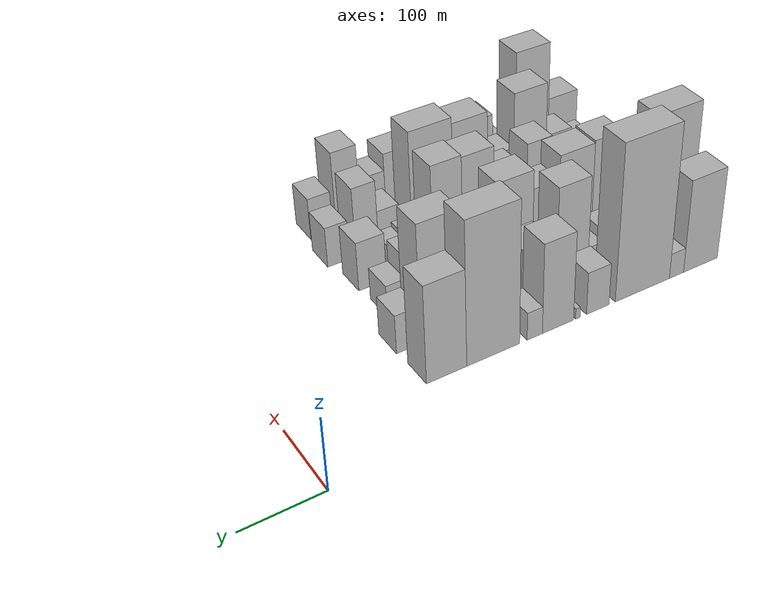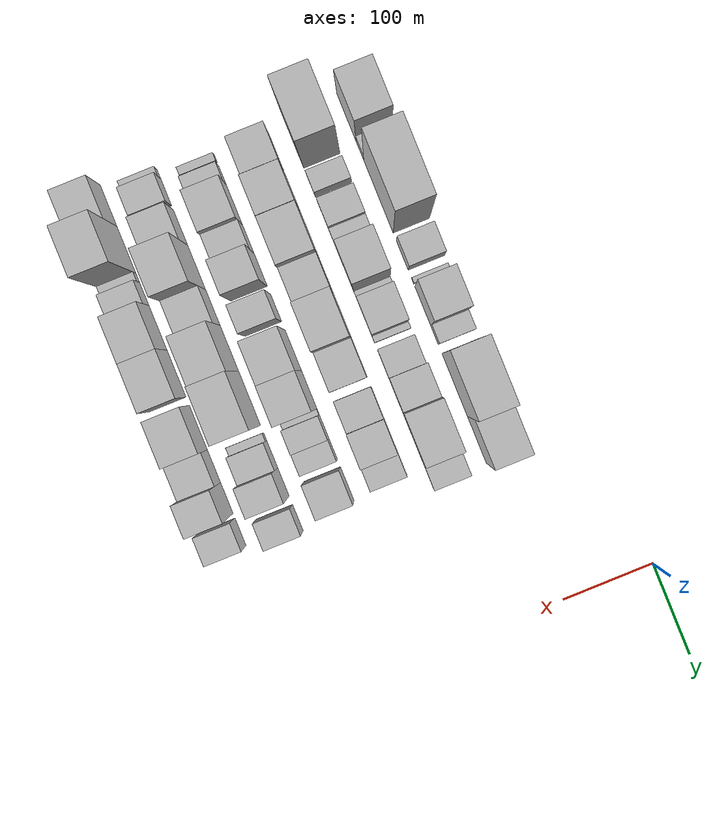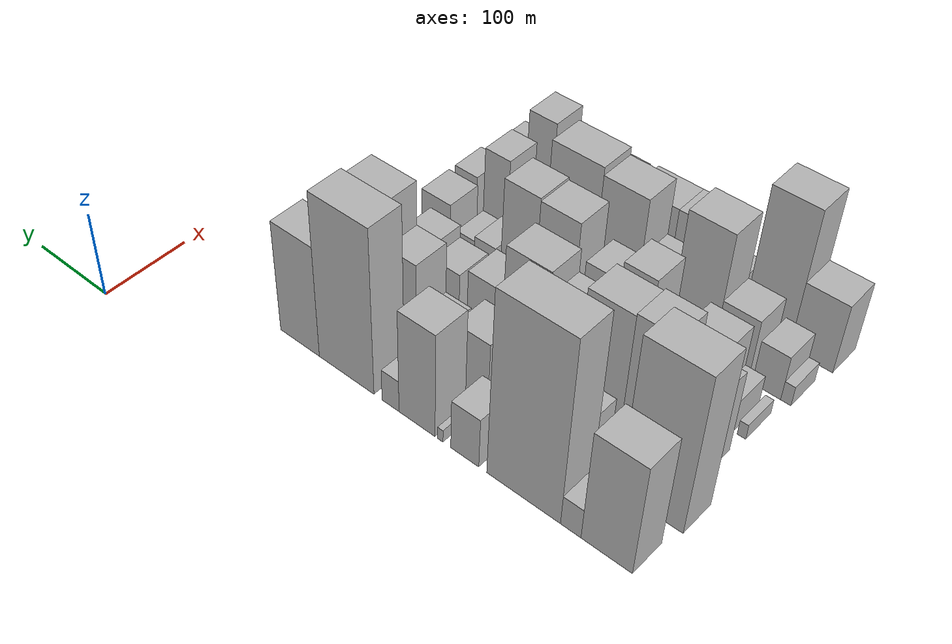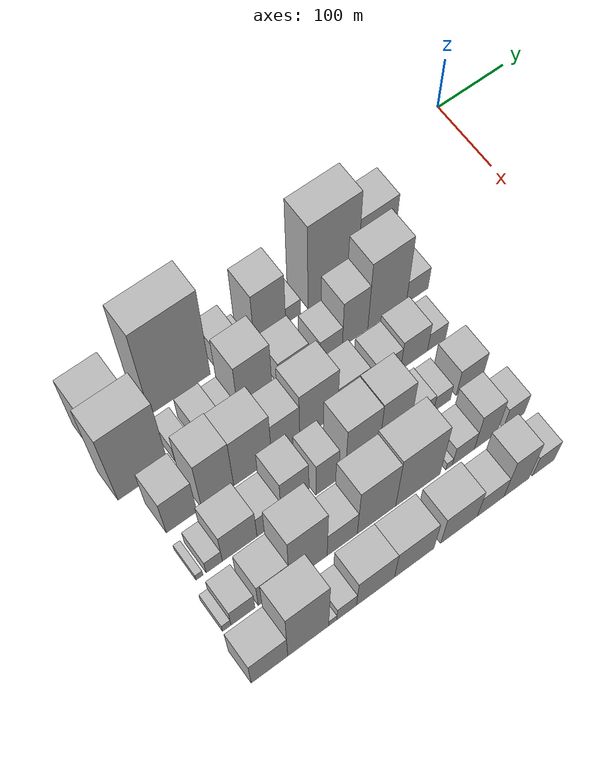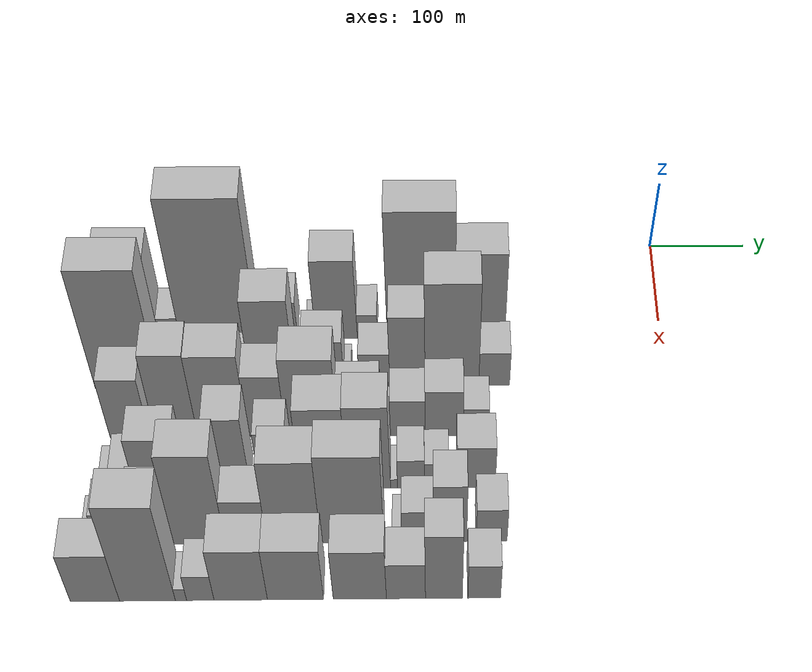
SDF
<sdf version="1.6">
 <world name="default">
  <model name="building_13">
   <static>1</static>
   <pose>100.0000 -541.7724 0 0.000000 0.000000 0.000000</pose>
   <link name="link">
    <pose>0 0 66.00 0 0 0</pose>
    <collision name="collision"><geometry><box><size>40.0000 52.1810 132.0000</size></box></geometry></collision>
    <visual name="visual">
     <cast_shadows>0</cast_shadows>
     <geometry><box><size>40.0000 52.1810 132.0000</size></box></geometry>
     <material>
      <script>
       <uri>model://HANNAS_wall/materials/scripts</uri>
       <uri>model://HANNAS_wall/materials/textures</uri>
       <name>vrc/HANNAS_wall</name>
      </script>
     </material>
    </visual>
   </link>
  </model>
  <model name="building_14">
   <static>1</static>
   <pose>100.0000 -505.0109 0 0.000000 0.000000 0.000000</pose>
   <link name="link">
    <pose>0 0 18.00 0 0 0</pose>
    <collision name="collision"><geometry><box><size>40.0000 21.3421 36.0000</size></box></geometry></collision>
    <visual name="visual">
     <cast_shadows>0</cast_shadows>
     <geometry><box><size>40.0000 21.3421 36.0000</size></box></geometry>
     <material>
      <script>
       <uri>model://HANNAS_wall/materials/scripts</uri>
       <uri>model://HANNAS_wall/materials/textures</uri>
       <name>vrc/HANNAS_wall</name>
      </script>
     </material>
    </visual>
   </link>
  </model>
  <model name="building_15">
   <static>1</static>
   <pose>100.0000 -454.2661 0 0.000000 0.000000 0.000000</pose>
   <link name="link">
    <pose>0 0 109.50 0 0 0</pose>
    <collision name="collision"><geometry><box><size>40.0000 80.1474 219.0000</size></box></geometry></collision>
    <visual name="visual">
     <cast_shadows>0</cast_shadows>
     <geometry><box><size>40.0000 80.1474 219.0000</size></box></geometry>
     <material>
      <script>
       <uri>model://HANNAS_wall/materials/scripts</uri>
       <uri>model://HANNAS_wall/materials/textures</uri>
       <name>vrc/HANNAS_wall</name>
      </script>
     </material>
    </visual>
   </link>
  </model>
  <model name="building_16">
   <static>1</static>
   <pose>100.0000 -389.1485 0 0.000000 0.000000 0.000000</pose>
   <link name="link">
    <pose>0 0 30.00 0 0 0</pose>
    <collision name="collision"><geometry><box><size>40.0000 32.0879 60.0000</size></box></geometry></collision>
    <visual name="visual">
     <cast_shadows>0</cast_shadows>
     <geometry><box><size>40.0000 32.0879 60.0000</size></box></geometry>
     <material>
      <script>
       <uri>model://HANNAS_wall/materials/scripts</uri>
       <uri>model://HANNAS_wall/materials/textures</uri>
       <name>vrc/HANNAS_wall</name>
      </script>
     </material>
    </visual>
   </link>
  </model>
  <model name="building_17">
   <static>1</static>
   <pose>100.0000 -360.9541 0 0.000000 0.000000 0.000000</pose>
   <link name="link">
    <pose>0 0 7.50 0 0 0</pose>
    <collision name="collision"><geometry><box><size>40.0000 6.3009 15.0000</size></box></geometry></collision>
    <visual name="visual">
     <cast_shadows>0</cast_shadows>
     <geometry><box><size>40.0000 6.3009 15.0000</size></box></geometry>
     <material>
      <script>
       <uri>model://HANNAS_wall/materials/scripts</uri>
       <uri>model://HANNAS_wall/materials/textures</uri>
       <name>vrc/HANNAS_wall</name>
      </script>
     </material>
    </visual>
   </link>
  </model>
  <model name="building_18">
   <static>1</static>
   <pose>100.0000 -333.2921 0 0.000000 0.000000 0.000000</pose>
   <link name="link">
    <pose>0 0 63.00 0 0 0</pose>
    <collision name="collision"><geometry><box><size>40.0000 43.0232 126.0000</size></box></geometry></collision>
    <visual name="visual">
     <cast_shadows>0</cast_shadows>
     <geometry><box><size>40.0000 43.0232 126.0000</size></box></geometry>
     <material>
      <script>
       <uri>model://HANNAS_wall/materials/scripts</uri>
       <uri>model://HANNAS_wall/materials/textures</uri>
       <name>vrc/HANNAS_wall</name>
      </script>
     </material>
    </visual>
   </link>
  </model>
  <model name="building_19">
   <static>1</static>
   <pose>100.0000 -301.3804 0 0.000000 0.000000 0.000000</pose>
   <link name="link">
    <pose>0 0 19.50 0 0 0</pose>
    <collision name="collision"><geometry><box><size>40.0000 20.8003 39.0000</size></box></geometry></collision>
    <visual name="visual">
     <cast_shadows>0</cast_shadows>
     <geometry><box><size>40.0000 20.8003 39.0000</size></box></geometry>
     <material>
      <script>
       <uri>model://HANNAS_wall/materials/scripts</uri>
       <uri>model://HANNAS_wall/materials/textures</uri>
       <name>vrc/HANNAS_wall</name>
      </script>
     </material>
    </visual>
   </link>
  </model>
  <model name="building_20">
   <static>1</static>
   <pose>100.0000 -246.1595 0 0.000000 0.000000 0.000000</pose>
   <link name="link">
    <pose>0 0 99.00 0 0 0</pose>
    <collision name="collision"><geometry><box><size>40.0000 69.6414 198.0000</size></box></geometry></collision>
    <visual name="visual">
     <cast_shadows>0</cast_shadows>
     <geometry><box><size>40.0000 69.6414 198.0000</size></box></geometry>
     <material>
      <script>
       <uri>model://HANNAS_wall/materials/scripts</uri>
       <uri>model://HANNAS_wall/materials/textures</uri>
       <name>vrc/HANNAS_wall</name>
      </script>
     </material>
    </visual>
   </link>
  </model>
  <model name="building_21">
   <static>1</static>
   <pose>100.0000 -185.6320 0 0.000000 0.000000 0.000000</pose>
   <link name="link">
    <pose>0 0 67.50 0 0 0</pose>
    <collision name="collision"><geometry><box><size>40.0000 51.4138 135.0000</size></box></geometry></collision>
    <visual name="visual">
     <cast_shadows>0</cast_shadows>
     <geometry><box><size>40.0000 51.4138 135.0000</size></box></geometry>
     <material>
      <script>
       <uri>model://HANNAS_wall/materials/scripts</uri>
       <uri>model://HANNAS_wall/materials/textures</uri>
       <name>vrc/HANNAS_wall</name>
      </script>
     </material>
    </visual>
   </link>
  </model>
  <model name="building_63">
   <static>1</static>
   <pose>160.0000 -542.6554 0 0.000000 0.000000 0.000000</pose>
   <link name="link">
    <pose>0 0 94.50 0 0 0</pose>
    <collision name="collision"><geometry><box><size>40.0000 65.0789 189.0000</size></box></geometry></collision>
    <visual name="visual">
     <cast_shadows>0</cast_shadows>
     <geometry><box><size>40.0000 65.0789 189.0000</size></box></geometry>
     <material>
      <script>
       <uri>model://HANNAS_wall/materials/scripts</uri>
       <uri>model://HANNAS_wall/materials/textures</uri>
       <name>vrc/HANNAS_wall</name>
      </script>
     </material>
    </visual>
   </link>
  </model>
  <model name="building_64">
   <static>1</static>
   <pose>160.0000 -490.1857 0 0.000000 0.000000 0.000000</pose>
   <link name="link">
    <pose>0 0 21.00 0 0 0</pose>
    <collision name="collision"><geometry><box><size>40.0000 23.8605 42.0000</size></box></geometry></collision>
    <visual name="visual">
     <cast_shadows>0</cast_shadows>
     <geometry><box><size>40.0000 23.8605 42.0000</size></box></geometry>
     <material>
      <script>
       <uri>model://HANNAS_wall/materials/scripts</uri>
       <uri>model://HANNAS_wall/materials/textures</uri>
       <name>vrc/HANNAS_wall</name>
      </script>
     </material>
    </visual>
   </link>
  </model>
  <model name="building_65">
   <static>1</static>
   <pose>160.0000 -455.5617 0 0.000000 0.000000 0.000000</pose>
   <link name="link">
    <pose>0 0 27.00 0 0 0</pose>
    <collision name="collision"><geometry><box><size>40.0000 31.3876 54.0000</size></box></geometry></collision>
    <visual name="visual">
     <cast_shadows>0</cast_shadows>
     <geometry><box><size>40.0000 31.3876 54.0000</size></box></geometry>
     <material>
      <script>
       <uri>model://HANNAS_wall/materials/scripts</uri>
       <uri>model://HANNAS_wall/materials/textures</uri>
       <name>vrc/HANNAS_wall</name>
      </script>
     </material>
    </visual>
   </link>
  </model>
  <model name="building_66">
   <static>1</static>
   <pose>160.0000 -429.0084 0 0.000000 0.000000 0.000000</pose>
   <link name="link">
    <pose>0 0 19.50 0 0 0</pose>
    <collision name="collision"><geometry><box><size>40.0000 21.7190 39.0000</size></box></geometry></collision>
    <visual name="visual">
     <cast_shadows>0</cast_shadows>
     <geometry><box><size>40.0000 21.7190 39.0000</size></box></geometry>
     <material>
      <script>
       <uri>model://HANNAS_wall/materials/scripts</uri>
       <uri>model://HANNAS_wall/materials/textures</uri>
       <name>vrc/HANNAS_wall</name>
      </script>
     </material>
    </visual>
   </link>
  </model>
  <model name="building_67">
   <static>1</static>
   <pose>160.0000 -395.6037 0 0.000000 0.000000 0.000000</pose>
   <link name="link">
    <pose>0 0 70.50 0 0 0</pose>
    <collision name="collision"><geometry><box><size>40.0000 45.0903 141.0000</size></box></geometry></collision>
    <visual name="visual">
     <cast_shadows>0</cast_shadows>
     <geometry><box><size>40.0000 45.0903 141.0000</size></box></geometry>
     <material>
      <script>
       <uri>model://HANNAS_wall/materials/scripts</uri>
       <uri>model://HANNAS_wall/materials/textures</uri>
       <name>vrc/HANNAS_wall</name>
      </script>
     </material>
    </visual>
   </link>
  </model>
  <model name="building_68">
   <static>1</static>
   <pose>160.0000 -368.7644 0 0.000000 0.000000 0.000000</pose>
   <link name="link">
    <pose>0 0 9.00 0 0 0</pose>
    <collision name="collision"><geometry><box><size>40.0000 8.5884 18.0000</size></box></geometry></collision>
    <visual name="visual">
     <cast_shadows>0</cast_shadows>
     <geometry><box><size>40.0000 8.5884 18.0000</size></box></geometry>
     <material>
      <script>
       <uri>model://HANNAS_wall/materials/scripts</uri>
       <uri>model://HANNAS_wall/materials/textures</uri>
       <name>vrc/HANNAS_wall</name>
      </script>
     </material>
    </visual>
   </link>
  </model>
  <model name="building_69">
   <static>1</static>
   <pose>160.0000 -344.1750 0 0.000000 0.000000 0.000000</pose>
   <link name="link">
    <pose>0 0 37.50 0 0 0</pose>
    <collision name="collision"><geometry><box><size>40.0000 40.5903 75.0000</size></box></geometry></collision>
    <visual name="visual">
     <cast_shadows>0</cast_shadows>
     <geometry><box><size>40.0000 40.5903 75.0000</size></box></geometry>
     <material>
      <script>
       <uri>model://HANNAS_wall/materials/scripts</uri>
       <uri>model://HANNAS_wall/materials/textures</uri>
       <name>vrc/HANNAS_wall</name>
      </script>
     </material>
    </visual>
   </link>
  </model>
  <model name="building_70">
   <static>1</static>
   <pose>160.0000 -320.2654 0 0.000000 0.000000 0.000000</pose>
   <link name="link">
    <pose>0 0 9.00 0 0 0</pose>
    <collision name="collision"><geometry><box><size>40.0000 7.2290 18.0000</size></box></geometry></collision>
    <visual name="visual">
     <cast_shadows>0</cast_shadows>
     <geometry><box><size>40.0000 7.2290 18.0000</size></box></geometry>
     <material>
      <script>
       <uri>model://HANNAS_wall/materials/scripts</uri>
       <uri>model://HANNAS_wall/materials/textures</uri>
       <name>vrc/HANNAS_wall</name>
      </script>
     </material>
    </visual>
   </link>
  </model>
  <model name="building_71">
   <static>1</static>
   <pose>160.0000 -293.2663 0 0.000000 0.000000 0.000000</pose>
   <link name="link">
    <pose>0 0 27.00 0 0 0</pose>
    <collision name="collision"><geometry><box><size>40.0000 30.7691 54.0000</size></box></geometry></collision>
    <visual name="visual">
     <cast_shadows>0</cast_shadows>
     <geometry><box><size>40.0000 30.7691 54.0000</size></box></geometry>
     <material>
      <script>
       <uri>model://HANNAS_wall/materials/scripts</uri>
       <uri>model://HANNAS_wall/materials/textures</uri>
       <name>vrc/HANNAS_wall</name>
      </script>
     </material>
    </visual>
   </link>
  </model>
  <model name="building_72">
   <static>1</static>
   <pose>160.0000 -260.1154 0 0.000000 0.000000 0.000000</pose>
   <link name="link">
    <pose>0 0 57.00 0 0 0</pose>
    <collision name="collision"><geometry><box><size>40.0000 35.5327 114.0000</size></box></geometry></collision>
    <visual name="visual">
     <cast_shadows>0</cast_shadows>
     <geometry><box><size>40.0000 35.5327 114.0000</size></box></geometry>
     <material>
      <script>
       <uri>model://HANNAS_wall/materials/scripts</uri>
       <uri>model://HANNAS_wall/materials/textures</uri>
       <name>vrc/HANNAS_wall</name>
      </script>
     </material>
    </visual>
   </link>
  </model>
  <model name="building_73">
   <static>1</static>
   <pose>160.0000 -215.2175 0 0.000000 0.000000 0.000000</pose>
   <link name="link">
    <pose>0 0 82.50 0 0 0</pose>
    <collision name="collision"><geometry><box><size>40.0000 54.2631 165.0000</size></box></geometry></collision>
    <visual name="visual">
     <cast_shadows>0</cast_shadows>
     <geometry><box><size>40.0000 54.2631 165.0000</size></box></geometry>
     <material>
      <script>
       <uri>model://HANNAS_wall/materials/scripts</uri>
       <uri>model://HANNAS_wall/materials/textures</uri>
       <name>vrc/HANNAS_wall</name>
      </script>
     </material>
    </visual>
   </link>
  </model>
  <model name="building_74">
   <static>1</static>
   <pose>160.0000 -172.6182 0 0.000000 0.000000 0.000000</pose>
   <link name="link">
    <pose>0 0 27.00 0 0 0</pose>
    <collision name="collision"><geometry><box><size>40.0000 30.9355 54.0000</size></box></geometry></collision>
    <visual name="visual">
     <cast_shadows>0</cast_shadows>
     <geometry><box><size>40.0000 30.9355 54.0000</size></box></geometry>
     <material>
      <script>
       <uri>model://HANNAS_wall/materials/scripts</uri>
       <uri>model://HANNAS_wall/materials/textures</uri>
       <name>vrc/HANNAS_wall</name>
      </script>
     </material>
    </visual>
   </link>
  </model>
  <model name="building_113">
   <static>1</static>
   <pose>220.0000 -534.2892 0 0.000000 0.000000 0.000000</pose>
   <link name="link">
    <pose>0 0 49.50 0 0 0</pose>
    <collision name="collision"><geometry><box><size>40.0000 39.0980 99.0000</size></box></geometry></collision>
    <visual name="visual">
     <cast_shadows>0</cast_shadows>
     <geometry><box><size>40.0000 39.0980 99.0000</size></box></geometry>
     <material>
      <script>
       <uri>model://HANNAS_wall/materials/scripts</uri>
       <uri>model://HANNAS_wall/materials/textures</uri>
       <name>vrc/HANNAS_wall</name>
      </script>
     </material>
    </visual>
   </link>
  </model>
  <model name="building_114">
   <static>1</static>
   <pose>220.0000 -487.9236 0 0.000000 0.000000 0.000000</pose>
   <link name="link">
    <pose>0 0 69.00 0 0 0</pose>
    <collision name="collision"><geometry><box><size>40.0000 41.6332 138.0000</size></box></geometry></collision>
    <visual name="visual">
     <cast_shadows>0</cast_shadows>
     <geometry><box><size>40.0000 41.6332 138.0000</size></box></geometry>
     <material>
      <script>
       <uri>model://HANNAS_wall/materials/scripts</uri>
       <uri>model://HANNAS_wall/materials/textures</uri>
       <name>vrc/HANNAS_wall</name>
      </script>
     </material>
    </visual>
   </link>
  </model>
  <model name="building_115">
   <static>1</static>
   <pose>220.0000 -442.2035 0 0.000000 0.000000 0.000000</pose>
   <link name="link">
    <pose>0 0 67.50 0 0 0</pose>
    <collision name="collision"><geometry><box><size>40.0000 49.8068 135.0000</size></box></geometry></collision>
    <visual name="visual">
     <cast_shadows>0</cast_shadows>
     <geometry><box><size>40.0000 49.8068 135.0000</size></box></geometry>
     <material>
      <script>
       <uri>model://HANNAS_wall/materials/scripts</uri>
       <uri>model://HANNAS_wall/materials/textures</uri>
       <name>vrc/HANNAS_wall</name>
      </script>
     </material>
    </visual>
   </link>
  </model>
  <model name="building_116">
   <static>1</static>
   <pose>220.0000 -398.6664 0 0.000000 0.000000 0.000000</pose>
   <link name="link">
    <pose>0 0 51.00 0 0 0</pose>
    <collision name="collision"><geometry><box><size>40.0000 37.2676 102.0000</size></box></geometry></collision>
    <visual name="visual">
     <cast_shadows>0</cast_shadows>
     <geometry><box><size>40.0000 37.2676 102.0000</size></box></geometry>
     <material>
      <script>
       <uri>model://HANNAS_wall/materials/scripts</uri>
       <uri>model://HANNAS_wall/materials/textures</uri>
       <name>vrc/HANNAS_wall</name>
      </script>
     </material>
    </visual>
   </link>
  </model>
  <model name="building_117">
   <static>1</static>
   <pose>220.0000 -354.5471 0 0.000000 0.000000 0.000000</pose>
   <link name="link">
    <pose>0 0 64.50 0 0 0</pose>
    <collision name="collision"><geometry><box><size>40.0000 50.9709 129.0000</size></box></geometry></collision>
    <visual name="visual">
     <cast_shadows>0</cast_shadows>
     <geometry><box><size>40.0000 50.9709 129.0000</size></box></geometry>
     <material>
      <script>
       <uri>model://HANNAS_wall/materials/scripts</uri>
       <uri>model://HANNAS_wall/materials/textures</uri>
       <name>vrc/HANNAS_wall</name>
      </script>
     </material>
    </visual>
   </link>
  </model>
  <model name="building_118">
   <static>1</static>
   <pose>220.0000 -307.9760 0 0.000000 0.000000 0.000000</pose>
   <link name="link">
    <pose>0 0 36.00 0 0 0</pose>
    <collision name="collision"><geometry><box><size>40.0000 42.1712 72.0000</size></box></geometry></collision>
    <visual name="visual">
     <cast_shadows>0</cast_shadows>
     <geometry><box><size>40.0000 42.1712 72.0000</size></box></geometry>
     <material>
      <script>
       <uri>model://HANNAS_wall/materials/scripts</uri>
       <uri>model://HANNAS_wall/materials/textures</uri>
       <name>vrc/HANNAS_wall</name>
      </script>
     </material>
    </visual>
   </link>
  </model>
  <model name="building_119">
   <static>1</static>
   <pose>220.0000 -259.7179 0 0.000000 0.000000 0.000000</pose>
   <link name="link">
    <pose>0 0 30.00 0 0 0</pose>
    <collision name="collision"><geometry><box><size>40.0000 34.3451 60.0000</size></box></geometry></collision>
    <visual name="visual">
     <cast_shadows>0</cast_shadows>
     <geometry><box><size>40.0000 34.3451 60.0000</size></box></geometry>
     <material>
      <script>
       <uri>model://HANNAS_wall/materials/scripts</uri>
       <uri>model://HANNAS_wall/materials/textures</uri>
       <name>vrc/HANNAS_wall</name>
      </script>
     </material>
    </visual>
   </link>
  </model>
  <model name="building_120">
   <static>1</static>
   <pose>220.0000 -223.7635 0 0.000000 0.000000 0.000000</pose>
   <link name="link">
    <pose>0 0 37.50 0 0 0</pose>
    <collision name="collision"><geometry><box><size>40.0000 37.5639 75.0000</size></box></geometry></collision>
    <visual name="visual">
     <cast_shadows>0</cast_shadows>
     <geometry><box><size>40.0000 37.5639 75.0000</size></box></geometry>
     <material>
      <script>
       <uri>model://HANNAS_wall/materials/scripts</uri>
       <uri>model://HANNAS_wall/materials/textures</uri>
       <name>vrc/HANNAS_wall</name>
      </script>
     </material>
    </visual>
   </link>
  </model>
  <model name="building_121">
   <static>1</static>
   <pose>220.0000 -192.2729 0 0.000000 0.000000 0.000000</pose>
   <link name="link">
    <pose>0 0 22.50 0 0 0</pose>
    <collision name="collision"><geometry><box><size>40.0000 25.4171 45.0000</size></box></geometry></collision>
    <visual name="visual">
     <cast_shadows>0</cast_shadows>
     <geometry><box><size>40.0000 25.4171 45.0000</size></box></geometry>
     <material>
      <script>
       <uri>model://HANNAS_wall/materials/scripts</uri>
       <uri>model://HANNAS_wall/materials/textures</uri>
       <name>vrc/HANNAS_wall</name>
      </script>
     </material>
    </visual>
   </link>
  </model>
  <model name="building_165">
   <static>1</static>
   <pose>280.0000 -552.9891 0 0.000000 0.000000 0.000000</pose>
   <link name="link">
    <pose>0 0 9.00 0 0 0</pose>
    <collision name="collision"><geometry><box><size>40.0000 8.8771 18.0000</size></box></geometry></collision>
    <visual name="visual">
     <cast_shadows>0</cast_shadows>
     <geometry><box><size>40.0000 8.8771 18.0000</size></box></geometry>
     <material>
      <script>
       <uri>model://HANNAS_wall/materials/scripts</uri>
       <uri>model://HANNAS_wall/materials/textures</uri>
       <name>vrc/HANNAS_wall</name>
      </script>
     </material>
    </visual>
   </link>
  </model>
  <model name="building_166">
   <static>1</static>
   <pose>280.0000 -534.2191 0 0.000000 0.000000 0.000000</pose>
   <link name="link">
    <pose>0 0 19.50 0 0 0</pose>
    <collision name="collision"><geometry><box><size>40.0000 20.6629 39.0000</size></box></geometry></collision>
    <visual name="visual">
     <cast_shadows>0</cast_shadows>
     <geometry><box><size>40.0000 20.6629 39.0000</size></box></geometry>
     <material>
      <script>
       <uri>model://HANNAS_wall/materials/scripts</uri>
       <uri>model://HANNAS_wall/materials/textures</uri>
       <name>vrc/HANNAS_wall</name>
      </script>
     </material>
    </visual>
   </link>
  </model>
  <model name="building_167">
   <static>1</static>
   <pose>280.0000 -501.7302 0 0.000000 0.000000 0.000000</pose>
   <link name="link">
    <pose>0 0 43.50 0 0 0</pose>
    <collision name="collision"><geometry><box><size>40.0000 44.3150 87.0000</size></box></geometry></collision>
    <visual name="visual">
     <cast_shadows>0</cast_shadows>
     <geometry><box><size>40.0000 44.3150 87.0000</size></box></geometry>
     <material>
      <script>
       <uri>model://HANNAS_wall/materials/scripts</uri>
       <uri>model://HANNAS_wall/materials/textures</uri>
       <name>vrc/HANNAS_wall</name>
      </script>
     </material>
    </visual>
   </link>
  </model>
  <model name="building_168">
   <static>1</static>
   <pose>280.0000 -463.7469 0 0.000000 0.000000 0.000000</pose>
   <link name="link">
    <pose>0 0 31.50 0 0 0</pose>
    <collision name="collision"><geometry><box><size>40.0000 31.6515 63.0000</size></box></geometry></collision>
    <visual name="visual">
     <cast_shadows>0</cast_shadows>
     <geometry><box><size>40.0000 31.6515 63.0000</size></box></geometry>
     <material>
      <script>
       <uri>model://HANNAS_wall/materials/scripts</uri>
       <uri>model://HANNAS_wall/materials/textures</uri>
       <name>vrc/HANNAS_wall</name>
      </script>
     </material>
    </visual>
   </link>
  </model>
  <model name="building_169">
   <static>1</static>
   <pose>280.0000 -429.9049 0 0.000000 0.000000 0.000000</pose>
   <link name="link">
    <pose>0 0 60.00 0 0 0</pose>
    <collision name="collision"><geometry><box><size>40.0000 36.0327 120.0000</size></box></geometry></collision>
    <visual name="visual">
     <cast_shadows>0</cast_shadows>
     <geometry><box><size>40.0000 36.0327 120.0000</size></box></geometry>
     <material>
      <script>
       <uri>model://HANNAS_wall/materials/scripts</uri>
       <uri>model://HANNAS_wall/materials/textures</uri>
       <name>vrc/HANNAS_wall</name>
      </script>
     </material>
    </visual>
   </link>
  </model>
  <model name="building_170">
   <static>1</static>
   <pose>280.0000 -387.8506 0 0.000000 0.000000 0.000000</pose>
   <link name="link">
    <pose>0 0 48.00 0 0 0</pose>
    <collision name="collision"><geometry><box><size>40.0000 30.0759 96.0000</size></box></geometry></collision>
    <visual name="visual">
     <cast_shadows>0</cast_shadows>
     <geometry><box><size>40.0000 30.0759 96.0000</size></box></geometry>
     <material>
      <script>
       <uri>model://HANNAS_wall/materials/scripts</uri>
       <uri>model://HANNAS_wall/materials/textures</uri>
       <name>vrc/HANNAS_wall</name>
      </script>
     </material>
    </visual>
   </link>
  </model>
  <model name="building_171">
   <static>1</static>
   <pose>280.0000 -341.1569 0 0.000000 0.000000 0.000000</pose>
   <link name="link">
    <pose>0 0 67.50 0 0 0</pose>
    <collision name="collision"><geometry><box><size>40.0000 45.3115 135.0000</size></box></geometry></collision>
    <visual name="visual">
     <cast_shadows>0</cast_shadows>
     <geometry><box><size>40.0000 45.3115 135.0000</size></box></geometry>
     <material>
      <script>
       <uri>model://HANNAS_wall/materials/scripts</uri>
       <uri>model://HANNAS_wall/materials/textures</uri>
       <name>vrc/HANNAS_wall</name>
      </script>
     </material>
    </visual>
   </link>
  </model>
  <model name="building_172">
   <static>1</static>
   <pose>280.0000 -297.4704 0 0.000000 0.000000 0.000000</pose>
   <link name="link">
    <pose>0 0 69.00 0 0 0</pose>
    <collision name="collision"><geometry><box><size>40.0000 42.0615 138.0000</size></box></geometry></collision>
    <visual name="visual">
     <cast_shadows>0</cast_shadows>
     <geometry><box><size>40.0000 42.0615 138.0000</size></box></geometry>
     <material>
      <script>
       <uri>model://HANNAS_wall/materials/scripts</uri>
       <uri>model://HANNAS_wall/materials/textures</uri>
       <name>vrc/HANNAS_wall</name>
      </script>
     </material>
    </visual>
   </link>
  </model>
  <model name="building_173">
   <static>1</static>
   <pose>280.0000 -273.1078 0 0.000000 0.000000 0.000000</pose>
   <link name="link">
    <pose>0 0 7.50 0 0 0</pose>
    <collision name="collision"><geometry><box><size>40.0000 6.6636 15.0000</size></box></geometry></collision>
    <visual name="visual">
     <cast_shadows>0</cast_shadows>
     <geometry><box><size>40.0000 6.6636 15.0000</size></box></geometry>
     <material>
      <script>
       <uri>model://HANNAS_wall/materials/scripts</uri>
       <uri>model://HANNAS_wall/materials/textures</uri>
       <name>vrc/HANNAS_wall</name>
      </script>
     </material>
    </visual>
   </link>
  </model>
  <model name="building_174">
   <static>1</static>
   <pose>280.0000 -256.6581 0 0.000000 0.000000 0.000000</pose>
   <link name="link">
    <pose>0 0 24.00 0 0 0</pose>
    <collision name="collision"><geometry><box><size>40.0000 26.2357 48.0000</size></box></geometry></collision>
    <visual name="visual">
     <cast_shadows>0</cast_shadows>
     <geometry><box><size>40.0000 26.2357 48.0000</size></box></geometry>
     <material>
      <script>
       <uri>model://HANNAS_wall/materials/scripts</uri>
       <uri>model://HANNAS_wall/materials/textures</uri>
       <name>vrc/HANNAS_wall</name>
      </script>
     </material>
    </visual>
   </link>
  </model>
  <model name="building_175">
   <static>1</static>
   <pose>280.0000 -231.9223 0 0.000000 0.000000 0.000000</pose>
   <link name="link">
    <pose>0 0 21.00 0 0 0</pose>
    <collision name="collision"><geometry><box><size>40.0000 23.2359 42.0000</size></box></geometry></collision>
    <visual name="visual">
     <cast_shadows>0</cast_shadows>
     <geometry><box><size>40.0000 23.2359 42.0000</size></box></geometry>
     <material>
      <script>
       <uri>model://HANNAS_wall/materials/scripts</uri>
       <uri>model://HANNAS_wall/materials/textures</uri>
       <name>vrc/HANNAS_wall</name>
      </script>
     </material>
    </visual>
   </link>
  </model>
  <model name="building_176">
   <static>1</static>
   <pose>280.0000 -193.6995 0 0.000000 0.000000 0.000000</pose>
   <link name="link">
    <pose>0 0 34.50 0 0 0</pose>
    <collision name="collision"><geometry><box><size>40.0000 37.2097 69.0000</size></box></geometry></collision>
    <visual name="visual">
     <cast_shadows>0</cast_shadows>
     <geometry><box><size>40.0000 37.2097 69.0000</size></box></geometry>
     <material>
      <script>
       <uri>model://HANNAS_wall/materials/scripts</uri>
       <uri>model://HANNAS_wall/materials/textures</uri>
       <name>vrc/HANNAS_wall</name>
      </script>
     </material>
    </visual>
   </link>
  </model>
  <model name="building_221">
   <static>1</static>
   <pose>340.0000 -560.4151 0 0.000000 0.000000 0.000000</pose>
   <link name="link">
    <pose>0 0 12.00 0 0 0</pose>
    <collision name="collision"><geometry><box><size>40.0000 10.7098 24.0000</size></box></geometry></collision>
    <visual name="visual">
     <cast_shadows>0</cast_shadows>
     <geometry><box><size>40.0000 10.7098 24.0000</size></box></geometry>
     <material>
      <script>
       <uri>model://HANNAS_wall/materials/scripts</uri>
       <uri>model://HANNAS_wall/materials/textures</uri>
       <name>vrc/HANNAS_wall</name>
      </script>
     </material>
    </visual>
   </link>
  </model>
  <model name="building_222">
   <static>1</static>
   <pose>340.0000 -539.9671 0 0.000000 0.000000 0.000000</pose>
   <link name="link">
    <pose>0 0 27.00 0 0 0</pose>
    <collision name="collision"><geometry><box><size>40.0000 30.1861 54.0000</size></box></geometry></collision>
    <visual name="visual">
     <cast_shadows>0</cast_shadows>
     <geometry><box><size>40.0000 30.1861 54.0000</size></box></geometry>
     <material>
      <script>
       <uri>model://HANNAS_wall/materials/scripts</uri>
       <uri>model://HANNAS_wall/materials/textures</uri>
       <name>vrc/HANNAS_wall</name>
      </script>
     </material>
    </visual>
   </link>
  </model>
  <model name="building_223">
   <static>1</static>
   <pose>340.0000 -501.1568 0 0.000000 0.000000 0.000000</pose>
   <link name="link">
    <pose>0 0 37.50 0 0 0</pose>
    <collision name="collision"><geometry><box><size>40.0000 39.4346 75.0000</size></box></geometry></collision>
    <visual name="visual">
     <cast_shadows>0</cast_shadows>
     <geometry><box><size>40.0000 39.4346 75.0000</size></box></geometry>
     <material>
      <script>
       <uri>model://HANNAS_wall/materials/scripts</uri>
       <uri>model://HANNAS_wall/materials/textures</uri>
       <name>vrc/HANNAS_wall</name>
      </script>
     </material>
    </visual>
   </link>
  </model>
  <model name="building_224">
   <static>1</static>
   <pose>340.0000 -456.9682 0 0.000000 0.000000 0.000000</pose>
   <link name="link">
    <pose>0 0 76.50 0 0 0</pose>
    <collision name="collision"><geometry><box><size>40.0000 48.9426 153.0000</size></box></geometry></collision>
    <visual name="visual">
     <cast_shadows>0</cast_shadows>
     <geometry><box><size>40.0000 48.9426 153.0000</size></box></geometry>
     <material>
      <script>
       <uri>model://HANNAS_wall/materials/scripts</uri>
       <uri>model://HANNAS_wall/materials/textures</uri>
       <name>vrc/HANNAS_wall</name>
      </script>
     </material>
    </visual>
   </link>
  </model>
  <model name="building_225">
   <static>1</static>
   <pose>340.0000 -412.7702 0 0.000000 0.000000 0.000000</pose>
   <link name="link">
    <pose>0 0 37.50 0 0 0</pose>
    <collision name="collision"><geometry><box><size>40.0000 39.4533 75.0000</size></box></geometry></collision>
    <visual name="visual">
     <cast_shadows>0</cast_shadows>
     <geometry><box><size>40.0000 39.4533 75.0000</size></box></geometry>
     <material>
      <script>
       <uri>model://HANNAS_wall/materials/scripts</uri>
       <uri>model://HANNAS_wall/materials/textures</uri>
       <name>vrc/HANNAS_wall</name>
      </script>
     </material>
    </visual>
   </link>
  </model>
  <model name="building_226">
   <static>1</static>
   <pose>340.0000 -367.5941 0 0.000000 0.000000 0.000000</pose>
   <link name="link">
    <pose>0 0 70.50 0 0 0</pose>
    <collision name="collision"><geometry><box><size>40.0000 50.8990 141.0000</size></box></geometry></collision>
    <visual name="visual">
     <cast_shadows>0</cast_shadows>
     <geometry><box><size>40.0000 50.8990 141.0000</size></box></geometry>
     <material>
      <script>
       <uri>model://HANNAS_wall/materials/scripts</uri>
       <uri>model://HANNAS_wall/materials/textures</uri>
       <name>vrc/HANNAS_wall</name>
      </script>
     </material>
    </visual>
   </link>
  </model>
  <model name="building_227">
   <static>1</static>
   <pose>340.0000 -312.2228 0 0.000000 0.000000 0.000000</pose>
   <link name="link">
    <pose>0 0 75.00 0 0 0</pose>
    <collision name="collision"><geometry><box><size>40.0000 59.8436 150.0000</size></box></geometry></collision>
    <visual name="visual">
     <cast_shadows>0</cast_shadows>
     <geometry><box><size>40.0000 59.8436 150.0000</size></box></geometry>
     <material>
      <script>
       <uri>model://HANNAS_wall/materials/scripts</uri>
       <uri>model://HANNAS_wall/materials/textures</uri>
       <name>vrc/HANNAS_wall</name>
      </script>
     </material>
    </visual>
   </link>
  </model>
  <model name="building_228">
   <static>1</static>
   <pose>340.0000 -269.8464 0 0.000000 0.000000 0.000000</pose>
   <link name="link">
    <pose>0 0 10.50 0 0 0</pose>
    <collision name="collision"><geometry><box><size>40.0000 8.9092 21.0000</size></box></geometry></collision>
    <visual name="visual">
     <cast_shadows>0</cast_shadows>
     <geometry><box><size>40.0000 8.9092 21.0000</size></box></geometry>
     <material>
      <script>
       <uri>model://HANNAS_wall/materials/scripts</uri>
       <uri>model://HANNAS_wall/materials/textures</uri>
       <name>vrc/HANNAS_wall</name>
      </script>
     </material>
    </visual>
   </link>
  </model>
  <model name="building_229">
   <static>1</static>
   <pose>340.0000 -250.3587 0 0.000000 0.000000 0.000000</pose>
   <link name="link">
    <pose>0 0 27.00 0 0 0</pose>
    <collision name="collision"><geometry><box><size>40.0000 30.0661 54.0000</size></box></geometry></collision>
    <visual name="visual">
     <cast_shadows>0</cast_shadows>
     <geometry><box><size>40.0000 30.0661 54.0000</size></box></geometry>
     <material>
      <script>
       <uri>model://HANNAS_wall/materials/scripts</uri>
       <uri>model://HANNAS_wall/materials/textures</uri>
       <name>vrc/HANNAS_wall</name>
      </script>
     </material>
    </visual>
   </link>
  </model>
  <model name="building_230">
   <static>1</static>
   <pose>340.0000 -219.6132 0 0.000000 0.000000 0.000000</pose>
   <link name="link">
    <pose>0 0 49.50 0 0 0</pose>
    <collision name="collision"><geometry><box><size>40.0000 31.4250 99.0000</size></box></geometry></collision>
    <visual name="visual">
     <cast_shadows>0</cast_shadows>
     <geometry><box><size>40.0000 31.4250 99.0000</size></box></geometry>
     <material>
      <script>
       <uri>model://HANNAS_wall/materials/scripts</uri>
       <uri>model://HANNAS_wall/materials/textures</uri>
       <name>vrc/HANNAS_wall</name>
      </script>
     </material>
    </visual>
   </link>
  </model>
  <model name="building_231">
   <static>1</static>
   <pose>340.0000 -180.2751 0 0.000000 0.000000 0.000000</pose>
   <link name="link">
    <pose>0 0 28.50 0 0 0</pose>
    <collision name="collision"><geometry><box><size>40.0000 29.2513 57.0000</size></box></geometry></collision>
    <visual name="visual">
     <cast_shadows>0</cast_shadows>
     <geometry><box><size>40.0000 29.2513 57.0000</size></box></geometry>
     <material>
      <script>
       <uri>model://HANNAS_wall/materials/scripts</uri>
       <uri>model://HANNAS_wall/materials/textures</uri>
       <name>vrc/HANNAS_wall</name>
      </script>
     </material>
    </visual>
   </link>
  </model>
  <model name="building_274">
   <static>1</static>
   <pose>400.0000 -549.6590 0 0.000000 0.000000 0.000000</pose>
   <link name="link">
    <pose>0 0 42.00 0 0 0</pose>
    <collision name="collision"><geometry><box><size>40.0000 45.5623 84.0000</size></box></geometry></collision>
    <visual name="visual">
     <cast_shadows>0</cast_shadows>
     <geometry><box><size>40.0000 45.5623 84.0000</size></box></geometry>
     <material>
      <script>
       <uri>model://HANNAS_wall/materials/scripts</uri>
       <uri>model://HANNAS_wall/materials/textures</uri>
       <name>vrc/HANNAS_wall</name>
      </script>
     </material>
    </visual>
   </link>
  </model>
  <model name="building_275">
   <static>1</static>
   <pose>400.0000 -500.9954 0 0.000000 0.000000 0.000000</pose>
   <link name="link">
    <pose>0 0 84.00 0 0 0</pose>
    <collision name="collision"><geometry><box><size>40.0000 51.7650 168.0000</size></box></geometry></collision>
    <visual name="visual">
     <cast_shadows>0</cast_shadows>
     <geometry><box><size>40.0000 51.7650 168.0000</size></box></geometry>
     <material>
      <script>
       <uri>model://HANNAS_wall/materials/scripts</uri>
       <uri>model://HANNAS_wall/materials/textures</uri>
       <name>vrc/HANNAS_wall</name>
      </script>
     </material>
    </visual>
   </link>
  </model>
  <model name="building_276">
   <static>1</static>
   <pose>400.0000 -469.9146 0 0.000000 0.000000 0.000000</pose>
   <link name="link">
    <pose>0 0 10.50 0 0 0</pose>
    <collision name="collision"><geometry><box><size>40.0000 10.3965 21.0000</size></box></geometry></collision>
    <visual name="visual">
     <cast_shadows>0</cast_shadows>
     <geometry><box><size>40.0000 10.3965 21.0000</size></box></geometry>
     <material>
      <script>
       <uri>model://HANNAS_wall/materials/scripts</uri>
       <uri>model://HANNAS_wall/materials/textures</uri>
       <name>vrc/HANNAS_wall</name>
      </script>
     </material>
    </visual>
   </link>
  </model>
  <model name="building_277">
   <static>1</static>
   <pose>400.0000 -452.0110 0 0.000000 0.000000 0.000000</pose>
   <link name="link">
    <pose>0 0 22.50 0 0 0</pose>
    <collision name="collision"><geometry><box><size>40.0000 25.4107 45.0000</size></box></geometry></collision>
    <visual name="visual">
     <cast_shadows>0</cast_shadows>
     <geometry><box><size>40.0000 25.4107 45.0000</size></box></geometry>
     <material>
      <script>
       <uri>model://HANNAS_wall/materials/scripts</uri>
       <uri>model://HANNAS_wall/materials/textures</uri>
       <name>vrc/HANNAS_wall</name>
      </script>
     </material>
    </visual>
   </link>
  </model>
  <model name="building_278">
   <static>1</static>
   <pose>400.0000 -414.5724 0 0.000000 0.000000 0.000000</pose>
   <link name="link">
    <pose>0 0 45.00 0 0 0</pose>
    <collision name="collision"><geometry><box><size>40.0000 49.4665 90.0000</size></box></geometry></collision>
    <visual name="visual">
     <cast_shadows>0</cast_shadows>
     <geometry><box><size>40.0000 49.4665 90.0000</size></box></geometry>
     <material>
      <script>
       <uri>model://HANNAS_wall/materials/scripts</uri>
       <uri>model://HANNAS_wall/materials/textures</uri>
       <name>vrc/HANNAS_wall</name>
      </script>
     </material>
    </visual>
   </link>
  </model>
  <model name="building_279">
   <static>1</static>
   <pose>400.0000 -363.8238 0 0.000000 0.000000 0.000000</pose>
   <link name="link">
    <pose>0 0 45.00 0 0 0</pose>
    <collision name="collision"><geometry><box><size>40.0000 52.0307 90.0000</size></box></geometry></collision>
    <visual name="visual">
     <cast_shadows>0</cast_shadows>
     <geometry><box><size>40.0000 52.0307 90.0000</size></box></geometry>
     <material>
      <script>
       <uri>model://HANNAS_wall/materials/scripts</uri>
       <uri>model://HANNAS_wall/materials/textures</uri>
       <name>vrc/HANNAS_wall</name>
      </script>
     </material>
    </visual>
   </link>
  </model>
  <model name="building_280">
   <static>1</static>
   <pose>400.0000 -304.1670 0 0.000000 0.000000 0.000000</pose>
   <link name="link">
    <pose>0 0 43.50 0 0 0</pose>
    <collision name="collision"><geometry><box><size>40.0000 49.2827 87.0000</size></box></geometry></collision>
    <visual name="visual">
     <cast_shadows>0</cast_shadows>
     <geometry><box><size>40.0000 49.2827 87.0000</size></box></geometry>
     <material>
      <script>
       <uri>model://HANNAS_wall/materials/scripts</uri>
       <uri>model://HANNAS_wall/materials/textures</uri>
       <name>vrc/HANNAS_wall</name>
      </script>
     </material>
    </visual>
   </link>
  </model>
  <model name="building_281">
   <static>1</static>
   <pose>400.0000 -261.4280 0 0.000000 0.000000 0.000000</pose>
   <link name="link">
    <pose>0 0 31.50 0 0 0</pose>
    <collision name="collision"><geometry><box><size>40.0000 36.1954 63.0000</size></box></geometry></collision>
    <visual name="visual">
     <cast_shadows>0</cast_shadows>
     <geometry><box><size>40.0000 36.1954 63.0000</size></box></geometry>
     <material>
      <script>
       <uri>model://HANNAS_wall/materials/scripts</uri>
       <uri>model://HANNAS_wall/materials/textures</uri>
       <name>vrc/HANNAS_wall</name>
      </script>
     </material>
    </visual>
   </link>
  </model>
  <model name="building_282">
   <static>1</static>
   <pose>400.0000 -226.1727 0 0.000000 0.000000 0.000000</pose>
   <link name="link">
    <pose>0 0 57.00 0 0 0</pose>
    <collision name="collision"><geometry><box><size>40.0000 34.3151 114.0000</size></box></geometry></collision>
    <visual name="visual">
     <cast_shadows>0</cast_shadows>
     <geometry><box><size>40.0000 34.3151 114.0000</size></box></geometry>
     <material>
      <script>
       <uri>model://HANNAS_wall/materials/scripts</uri>
       <uri>model://HANNAS_wall/materials/textures</uri>
       <name>vrc/HANNAS_wall</name>
      </script>
     </material>
    </visual>
   </link>
  </model>
  <model name="building_283">
   <static>1</static>
   <pose>400.0000 -188.8478 0 0.000000 0.000000 0.000000</pose>
   <link name="link">
    <pose>0 0 30.00 0 0 0</pose>
    <collision name="collision"><geometry><box><size>40.0000 30.3346 60.0000</size></box></geometry></collision>
    <visual name="visual">
     <cast_shadows>0</cast_shadows>
     <geometry><box><size>40.0000 30.3346 60.0000</size></box></geometry>
     <material>
      <script>
       <uri>model://HANNAS_wall/materials/scripts</uri>
       <uri>model://HANNAS_wall/materials/textures</uri>
       <name>vrc/HANNAS_wall</name>
      </script>
     </material>
    </visual>
   </link>
  </model>
 </world>
</sdf>
